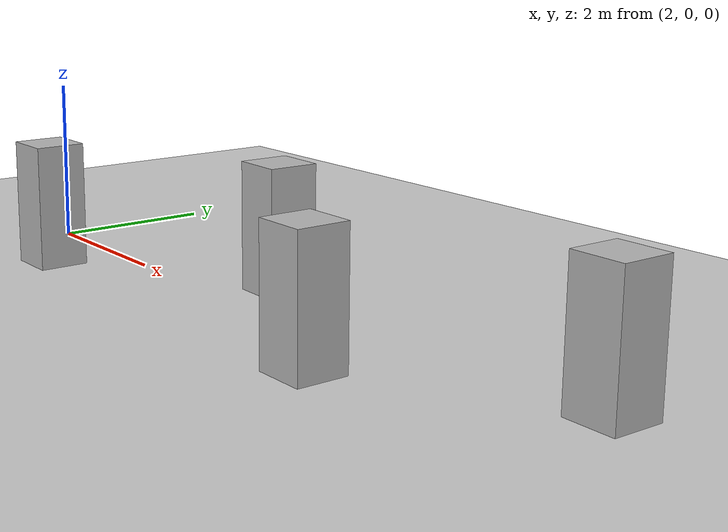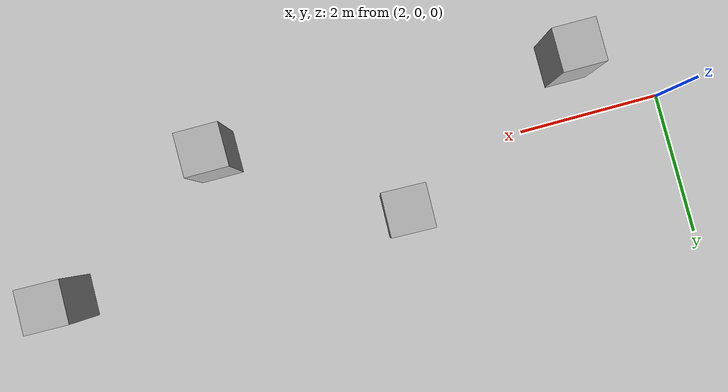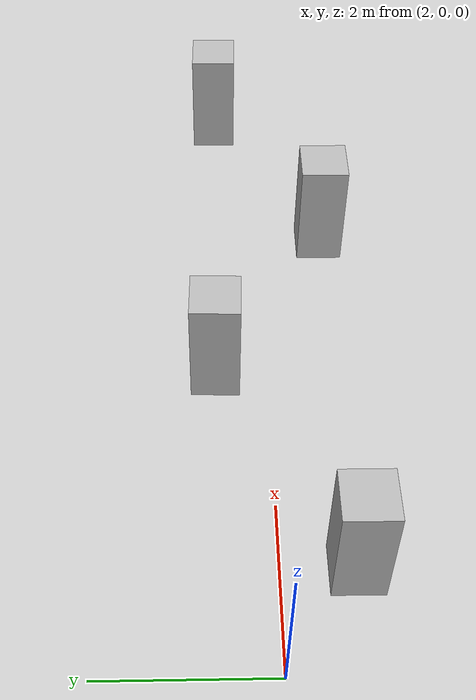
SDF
<?xml version="1.0"?>
<sdf version="1.6">
  <world name="v2-04g-r3-static-s5029">
    <gravity>0 0 -9.81</gravity>
    <physics name="v2_deterministic" type="ode">
      <max_step_size>0.002</max_step_size>
      <real_time_update_rate>500</real_time_update_rate>
    </physics>
    <include>
      <uri>model://sun</uri>
    </include>
    <include>
      <uri>model://ground_plane</uri>
    </include>
    <model name="pillar-1">
      <static>true</static>
      <pose>3.193554406 -0.828643010 0.750000000 0 0 -0.003250576</pose>
      <link name="link">
        <collision name="collision">
          <geometry>
            <box>
              <size>0.600000 0.600000 1.500000</size>
            </box>
          </geometry>
        </collision>
        <visual name="visual">
          <geometry>
            <box>
              <size>0.600000 0.600000 1.500000</size>
            </box>
          </geometry>
        </visual>
      </link>
    </model>
    <model name="pillar-2">
      <static>true</static>
      <pose>5.893155564 0.660237885 0.750000000 0 0 -0.026510780</pose>
      <link name="link">
        <collision name="collision">
          <geometry>
            <box>
              <size>0.600000 0.600000 1.500000</size>
            </box>
          </geometry>
        </collision>
        <visual name="visual">
          <geometry>
            <box>
              <size>0.600000 0.600000 1.500000</size>
            </box>
          </geometry>
        </visual>
      </link>
    </model>
    <model name="pillar-3">
      <static>true</static>
      <pose>8.271612223 -0.790806979 0.750000000 0 0 -0.003012947</pose>
      <link name="link">
        <collision name="collision">
          <geometry>
            <box>
              <size>0.600000 0.600000 1.500000</size>
            </box>
          </geometry>
        </collision>
        <visual name="visual">
          <geometry>
            <box>
              <size>0.600000 0.600000 1.500000</size>
            </box>
          </geometry>
        </visual>
      </link>
    </model>
    <model name="pillar-4">
      <static>true</static>
      <pose>10.757489075 0.633298572 0.750000000 0 0 -0.018519693</pose>
      <link name="link">
        <collision name="collision">
          <geometry>
            <box>
              <size>0.600000 0.600000 1.500000</size>
            </box>
          </geometry>
        </collision>
        <visual name="visual">
          <geometry>
            <box>
              <size>0.600000 0.600000 1.500000</size>
            </box>
          </geometry>
        </visual>
      </link>
    </model>
  </world>
</sdf>
